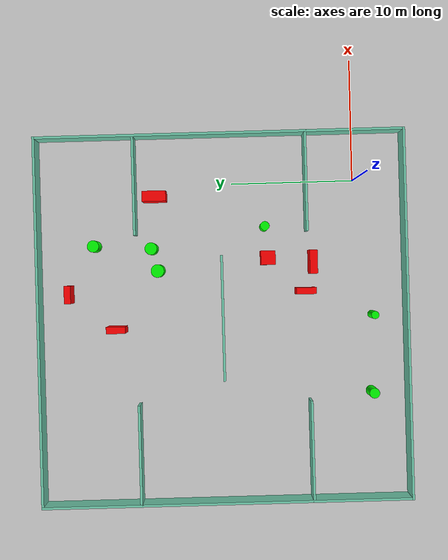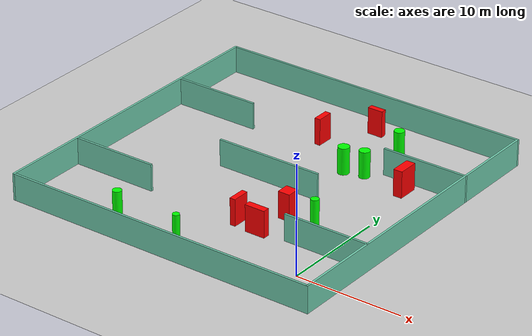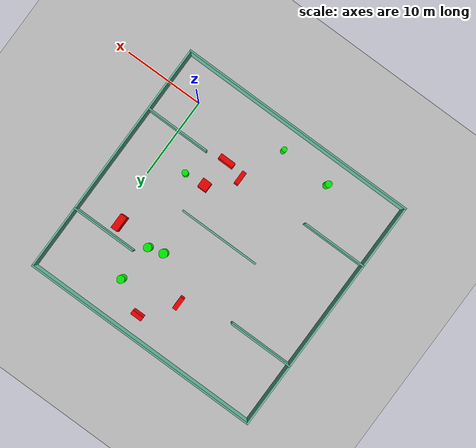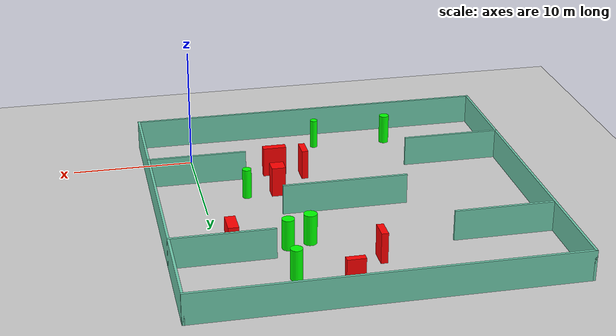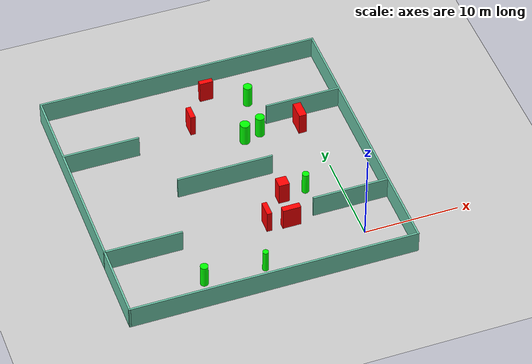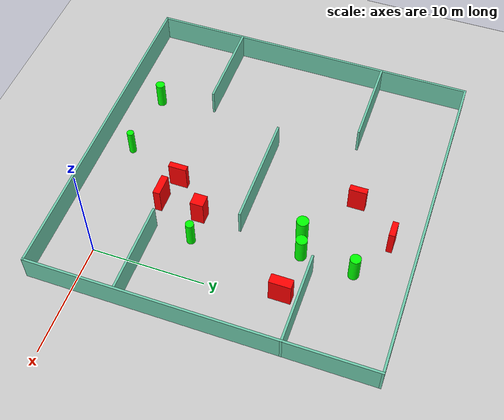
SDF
<sdf version="1.7">
 <world name="default">
  <light name="sun" type="directional">
   <pose>0 0 10 0 -0 0</pose>
   <diffuse>0.8 0.8 0.8 1</diffuse>
   <specular>0.2 0.2 0.2 1</specular>
   <attenuation>
    <range>1000</range>
    <constant>0.9</constant>
    <linear>0.01</linear>
    <quadratic>0.001</quadratic>
   </attenuation>
   <direction>-0.5 0.1 -0.9</direction>
   <spot><inner_angle>0</inner_angle><outer_angle>0</outer_angle><falloff>0</falloff></spot>
  </light>
  <model name="ground_plane">
   <static>1</static>
   <link name="link">
    <collision name="collision">
     <geometry><plane><normal>0 0 1</normal><size>100 100</size></plane></geometry>
     <surface>
      <contact><collide_bitmask>65535</collide_bitmask></contact>
      <friction><ode><mu>100</mu><mu2>50</mu2></ode></friction>
     </surface>
    </collision>
    <visual name="visual">
     <cast_shadows>0</cast_shadows>
     <geometry><plane><normal>0 0 1</normal><size>100 100</size></plane></geometry>
     <material>
      <script><uri>file://media/materials/scripts/gazebo.material</uri><name>Gazebo/Grey</name></script>
     </material>
    </visual>
   </link>
  </model>
  <gravity>0 0 -9.8</gravity>
  <magnetic_field>6e-06 2.3e-05 -4.2e-05</magnetic_field>
  <atmosphere type="adiabatic"/>
  <physics type="ode">
   <max_step_size>0.001</max_step_size>
   <real_time_factor>1</real_time_factor>
   <real_time_update_rate>1000</real_time_update_rate>
  </physics>
  <scene><ambient>0.4 0.4 0.4 1</ambient><background>0.7 0.7 0.7 1</background><shadows>1</shadows></scene>
  <spherical_coordinates>
   <surface_model>EARTH_WGS84</surface_model>
   <latitude_deg>0</latitude_deg>
   <longitude_deg>0</longitude_deg>
   <elevation>0</elevation>
   <heading_deg>0</heading_deg>
  </spherical_coordinates>
  <model name="my_base_walls">
   <link name="Wall_10">
    <collision name="Wall_10_Collision">
     <geometry><box><size>8.2 0.2 2.5</size></box></geometry>
     <pose>0 0 1.25 0 -0 0</pose>
    </collision>
    <visual name="Wall_10_Visual">
     <pose>0 0 1.25 0 -0 0</pose>
     <geometry><box><size>8.2 0.2 2.5</size></box></geometry>
     <material>
      <script><uri>file://media/materials/scripts/gazebo.material</uri><name>Gazebo/Grey</name></script>
      <ambient>0.435294 0.796078 0.67451 1</ambient>
     </material>
     <meta><layer>0</layer></meta>
    </visual>
    <pose>-11 -7 0 0 -0 0</pose>
   </link>
   <link name="Wall_12">
    <collision name="Wall_12_Collision">
     <geometry><box><size>8.2 0.2 2.5</size></box></geometry>
     <pose>0 0 1.25 0 -0 0</pose>
    </collision>
    <visual name="Wall_12_Visual">
     <pose>0 0 1.25 0 -0 0</pose>
     <geometry><box><size>8.2 0.2 2.5</size></box></geometry>
     <material>
      <script><uri>file://media/materials/scripts/gazebo.material</uri><name>Gazebo/Grey</name></script>
      <ambient>0.435294 0.796078 0.67451 1</ambient>
     </material>
     <meta><layer>0</layer></meta>
    </visual>
    <pose>-11 7 0 0 -0 0</pose>
   </link>
   <link name="Wall_14">
    <collision name="Wall_14_Collision">
     <geometry><box><size>8.2 0.2 2.5</size></box></geometry>
     <pose>0 0 1.25 0 -0 0</pose>
    </collision>
    <visual name="Wall_14_Visual">
     <pose>0 0 1.25 0 -0 0</pose>
     <geometry><box><size>8.2 0.2 2.5</size></box></geometry>
     <material>
      <script><uri>file://media/materials/scripts/gazebo.material</uri><name>Gazebo/Grey</name></script>
      <ambient>0.435294 0.796078 0.67451 1</ambient>
     </material>
     <meta><layer>0</layer></meta>
    </visual>
    <pose>11 7 0 0 -0 3.14159</pose>
   </link>
   <link name="Wall_16">
    <collision name="Wall_16_Collision">
     <geometry><box><size>10.2 0.2 2.5</size></box></geometry>
     <pose>0 0 1.25 0 -0 0</pose>
    </collision>
    <visual name="Wall_16_Visual">
     <pose>0 0 1.25 0 -0 0</pose>
     <geometry><box><size>10.2 0.2 2.5</size></box></geometry>
     <material>
      <script><uri>file://media/materials/scripts/gazebo.material</uri><name>Gazebo/Grey</name></script>
      <ambient>0.435294 0.796078 0.67451 1</ambient>
     </material>
     <meta><layer>0</layer></meta>
    </visual>
    <pose>0 0 0 0 -0 3.14159</pose>
   </link>
   <link name="Wall_2">
    <collision name="Wall_2_Collision">
     <geometry><box><size>30.2 0.2 2.5</size></box></geometry>
     <pose>0 0 1.25 0 -0 0</pose>
    </collision>
    <visual name="Wall_2_Visual">
     <pose>0 0 1.25 0 -0 0</pose>
     <geometry><box><size>30.2 0.2 2.5</size></box></geometry>
     <material>
      <script><uri>file://media/materials/scripts/gazebo.material</uri><name>Gazebo/Grey</name></script>
      <ambient>0.435294 0.796078 0.67451 1</ambient>
     </material>
     <meta><layer>0</layer></meta>
    </visual>
    <pose>0 -15 0 0 -0 3.14159</pose>
   </link>
   <link name="Wall_3">
    <collision name="Wall_3_Collision">
     <geometry><box><size>30.2 0.2 2.5</size></box></geometry>
     <pose>0 0 1.25 0 -0 0</pose>
    </collision>
    <visual name="Wall_3_Visual">
     <pose>0 0 1.25 0 -0 0</pose>
     <geometry><box><size>30.2 0.2 2.5</size></box></geometry>
     <material>
      <script><uri>file://media/materials/scripts/gazebo.material</uri><name>Gazebo/Grey</name></script>
      <ambient>0.435294 0.796078 0.67451 1</ambient>
     </material>
     <meta><layer>0</layer></meta>
    </visual>
    <pose>-15 0 0 0 -0 1.5708</pose>
   </link>
   <link name="Wall_4">
    <collision name="Wall_4_Collision">
     <geometry><box><size>30.2 0.2 2.5</size></box></geometry>
     <pose>0 0 1.25 0 -0 0</pose>
    </collision>
    <visual name="Wall_4_Visual">
     <pose>0 0 1.25 0 -0 0</pose>
     <geometry><box><size>30.2 0.2 2.5</size></box></geometry>
     <material>
      <script><uri>file://media/materials/scripts/gazebo.material</uri><name>Gazebo/Grey</name></script>
      <ambient>0.435294 0.796078 0.67451 1</ambient>
     </material>
     <meta><layer>0</layer></meta>
    </visual>
    <pose>0 15 0 0 -0 0</pose>
   </link>
   <link name="Wall_6">
    <collision name="Wall_6_Collision">
     <geometry><box><size>30.2 0.2 2.5</size></box></geometry>
     <pose>0 0 1.25 0 -0 0</pose>
    </collision>
    <visual name="Wall_6_Visual">
     <pose>0 0 1.25 0 -0 0</pose>
     <geometry><box><size>30.2 0.2 2.5</size></box></geometry>
     <material>
      <script><uri>file://media/materials/scripts/gazebo.material</uri><name>Gazebo/Grey</name></script>
      <ambient>0.435294 0.796078 0.67451 1</ambient>
     </material>
     <meta><layer>0</layer></meta>
    </visual>
    <pose>15 0 0 0 -0 1.5708</pose>
   </link>
   <link name="Wall_8">
    <collision name="Wall_8_Collision">
     <geometry><box><size>8.2 0.2 2.5</size></box></geometry>
     <pose>0 0 1.25 0 -0 0</pose>
    </collision>
    <visual name="Wall_8_Visual">
     <pose>0 0 1.25 0 -0 0</pose>
     <geometry><box><size>8.2 0.2 2.5</size></box></geometry>
     <material>
      <script><uri>file://media/materials/scripts/gazebo.material</uri><name>Gazebo/Grey</name></script>
      <ambient>0.435294 0.796078 0.67451 1</ambient>
     </material>
     <meta><layer>0</layer></meta>
    </visual>
    <pose>11 -7 0 0 -0 3.14159</pose>
   </link>
   <static>1</static>
   <pose>-11 11 0 0 -0 0</pose>
  </model>
  <model name="cylinder1">
   <static>1</static>
   <link name="link">
    <inertial>
     <mass>1</mass>
     <inertia><ixx>0.5</ixx><ixy>0</ixy><ixz>0</ixz><iyy>0.5</iyy><iyz>0</iyz><izz>1</izz></inertia>
    </inertial>
    <collision name="collision">
     <geometry><cylinder><radius>0.529953822154534</radius><length>2.5</length></cylinder></geometry>
    </collision>
    <visual name="visual">
     <geometry><cylinder><radius>0.529953822154534</radius><length>2.5</length></cylinder></geometry>
     <material>
      <ambient>0 1 0 1</ambient>
      <diffuse>0 1 0 1</diffuse>
      <specular>0.1 0.1 0.1 1</specular>
      <emissive>0 0 0 0</emissive>
     </material>
    </visual>
   </link>
   <pose>-7.030655248463958 16.20552167848178 1.25 0 0 0</pose>
  </model>
  <model name="cylinder2">
   <static>1</static>
   <link name="link">
    <inertial>
     <mass>1</mass>
     <inertia><ixx>0.5</ixx><ixy>0</ixy><ixz>0</ixz><iyy>0.5</iyy><iyz>0</iyz><izz>1</izz></inertia>
    </inertial>
    <collision name="collision">
     <geometry><cylinder><radius>0.3153908092993841</radius><length>2.5</length></cylinder></geometry>
    </collision>
    <visual name="visual">
     <geometry><cylinder><radius>0.3153908092993841</radius><length>2.5</length></cylinder></geometry>
     <material>
      <ambient>0 1 0 1</ambient>
      <diffuse>0 1 0 1</diffuse>
      <specular>0.1 0.1 0.1 1</specular>
      <emissive>0 0 0 0</emissive>
     </material>
    </visual>
   </link>
   <pose>-11.069543768905138 -1.3032330781540273 1.25 0 0 0</pose>
  </model>
  <model name="cylinder3">
   <static>1</static>
   <link name="link">
    <inertial>
     <mass>1</mass>
     <inertia><ixx>0.5</ixx><ixy>0</ixy><ixz>0</ixz><iyy>0.5</iyy><iyz>0</iyz><izz>1</izz></inertia>
    </inertial>
    <collision name="collision">
     <geometry><cylinder><radius>0.37254335208122313</radius><length>2.5</length></cylinder></geometry>
    </collision>
    <visual name="visual">
     <geometry><cylinder><radius>0.37254335208122313</radius><length>2.5</length></cylinder></geometry>
     <material>
      <ambient>0 1 0 1</ambient>
      <diffuse>0 1 0 1</diffuse>
      <specular>0.1 0.1 0.1 1</specular>
      <emissive>0 0 0 0</emissive>
     </material>
    </visual>
   </link>
   <pose>-3.623492511718865 7.427203267041666 1.25 0 0 0</pose>
  </model>
  <model name="cylinder4">
   <static>1</static>
   <link name="link">
    <inertial>
     <mass>1</mass>
     <inertia><ixx>0.5</ixx><ixy>0</ixy><ixz>0</ixz><iyy>0.5</iyy><iyz>0</iyz><izz>1</izz></inertia>
    </inertial>
    <collision name="collision">
     <geometry><cylinder><radius>0.47394218462480203</radius><length>2.5</length></cylinder></geometry>
    </collision>
    <visual name="visual">
     <geometry><cylinder><radius>0.47394218462480203</radius><length>2.5</length></cylinder></geometry>
     <material>
      <ambient>0 1 0 1</ambient>
      <diffuse>0 1 0 1</diffuse>
      <specular>0.1 0.1 0.1 1</specular>
      <emissive>0 0 0 0</emissive>
     </material>
    </visual>
   </link>
   <pose>-4.902327033697768 21.371357022187745 1.25 0 0 0</pose>
  </model>
  <model name="cylinder5">
   <static>1</static>
   <link name="link">
    <inertial>
     <mass>1</mass>
     <inertia><ixx>0.5</ixx><ixy>0</ixy><ixz>0</ixz><iyy>0.5</iyy><iyz>0</iyz><izz>1</izz></inertia>
    </inertial>
    <collision name="collision">
     <geometry><cylinder><radius>0.4961011678103849</radius><length>2.5</length></cylinder></geometry>
    </collision>
    <visual name="visual">
     <geometry><cylinder><radius>0.4961011678103849</radius><length>2.5</length></cylinder></geometry>
     <material>
      <ambient>0 1 0 1</ambient>
      <diffuse>0 1 0 1</diffuse>
      <specular>0.1 0.1 0.1 1</specular>
      <emissive>0 0 0 0</emissive>
     </material>
    </visual>
   </link>
   <pose>-5.212145679963491 16.691436400659533 1.25 0 0 0</pose>
  </model>
  <model name="cylinder6">
   <static>1</static>
   <link name="link">
    <inertial>
     <mass>1</mass>
     <inertia><ixx>0.5</ixx><ixy>0</ixy><ixz>0</ixz><iyy>0.5</iyy><iyz>0</iyz><izz>1</izz></inertia>
    </inertial>
    <collision name="collision">
     <geometry><cylinder><radius>0.41343296139335517</radius><length>2.5</length></cylinder></geometry>
    </collision>
    <visual name="visual">
     <geometry><cylinder><radius>0.41343296139335517</radius><length>2.5</length></cylinder></geometry>
     <material>
      <ambient>0 1 0 1</ambient>
      <diffuse>0 1 0 1</diffuse>
      <specular>0.1 0.1 0.1 1</specular>
      <emissive>0 0 0 0</emissive>
     </material>
    </visual>
   </link>
   <pose>-17.391743302797067 -1.0940527576541874 1.25 0 0 0</pose>
  </model>
  <model name="box1">
   <static>1</static>
   <link name="link">
    <inertial>
     <mass>1</mass>
     <inertia><ixx>0.083</ixx><ixy>0</ixy><ixz>0</ixz><iyy>0.083</iyy><iyz>0</iyz><izz>0.083</izz></inertia>
    </inertial>
    <collision name="collision">
     <geometry><box><size>0.5281561349004591 1.633708956285287 2.5</size></box></geometry>
    </collision>
    <visual name="visual">
     <geometry><box><size>0.5281561349004591 1.633708956285287 2.5</size></box></geometry>
     <material>
      <ambient>1 0 0 1</ambient>
      <diffuse>1 0 0 1</diffuse>
      <specular>0.1 0.1 0.1 1</specular>
      <emissive>0 0 0 0</emissive>
     </material>
    </visual>
    <sensor name="my_contact" type="contact">
     <contact><collision>box_collision</collision><topic>__default_topic__</topic></contact>
    </sensor>
   </link>
   <pose>-8.960958166410947 4.20203346112017 1.25 0 0 0</pose>
  </model>
  <model name="box2">
   <static>1</static>
   <link name="link">
    <inertial>
     <mass>1</mass>
     <inertia><ixx>0.083</ixx><ixy>0</ixy><ixz>0</ixz><iyy>0.083</iyy><iyz>0</iyz><izz>0.083</izz></inertia>
    </inertial>
    <collision name="collision">
     <geometry><box><size>1.9299498718750314 0.6275477497743102 2.5</size></box></geometry>
    </collision>
    <visual name="visual">
     <geometry><box><size>1.9299498718750314 0.6275477497743102 2.5</size></box></geometry>
     <material>
      <ambient>1 0 0 1</ambient>
      <diffuse>1 0 0 1</diffuse>
      <specular>0.1 0.1 0.1 1</specular>
      <emissive>0 0 0 0</emissive>
     </material>
    </visual>
    <sensor name="my_contact" type="contact">
     <contact><collision>box_collision</collision><topic>__default_topic__</topic></contact>
    </sensor>
   </link>
   <pose>-6.6105297476158285 3.55179089391085 1.25 0 0 0</pose>
  </model>
  <model name="box3">
   <static>1</static>
   <link name="link">
    <inertial>
     <mass>1</mass>
     <inertia><ixx>0.083</ixx><ixy>0</ixy><ixz>0</ixz><iyy>0.083</iyy><iyz>0</iyz><izz>0.083</izz></inertia>
    </inertial>
    <collision name="collision">
     <geometry><box><size>0.8425572466496858 1.9182658190252206 2.5</size></box></geometry>
    </collision>
    <visual name="visual">
     <geometry><box><size>0.8425572466496858 1.9182658190252206 2.5</size></box></geometry>
     <material>
      <ambient>1 0 0 1</ambient>
      <diffuse>1 0 0 1</diffuse>
      <specular>0.1 0.1 0.1 1</specular>
      <emissive>0 0 0 0</emissive>
     </material>
    </visual>
    <sensor name="my_contact" type="contact">
     <contact><collision>box_collision</collision><topic>__default_topic__</topic></contact>
    </sensor>
   </link>
   <pose>-0.954780776961492 16.353166070233435 1.25 0 0 0</pose>
  </model>
  <model name="box4">
   <static>1</static>
   <link name="link">
    <inertial>
     <mass>1</mass>
     <inertia><ixx>0.083</ixx><ixy>0</ixy><ixz>0</ixz><iyy>0.083</iyy><iyz>0</iyz><izz>0.083</izz></inertia>
    </inertial>
    <collision name="collision">
     <geometry><box><size>0.5485666901687882 1.5676617491833262 2.5</size></box></geometry>
    </collision>
    <visual name="visual">
     <geometry><box><size>0.5485666901687882 1.5676617491833262 2.5</size></box></geometry>
     <material>
      <ambient>1 0 0 1</ambient>
      <diffuse>1 0 0 1</diffuse>
      <specular>0.1 0.1 0.1 1</specular>
      <emissive>0 0 0 0</emissive>
     </material>
    </visual>
    <sensor name="my_contact" type="contact">
     <contact><collision>box_collision</collision><topic>__default_topic__</topic></contact>
    </sensor>
   </link>
   <pose>-11.748007630844986 19.717949072135 1.25 0 0 0</pose>
  </model>
  <model name="box5">
   <static>1</static>
   <link name="link">
    <inertial>
     <mass>1</mass>
     <inertia><ixx>0.083</ixx><ixy>0</ixy><ixz>0</ixz><iyy>0.083</iyy><iyz>0</iyz><izz>0.083</izz></inertia>
    </inertial>
    <collision name="collision">
     <geometry><box><size>1.1421738223073423 1.174757557620813 2.5</size></box></geometry>
    </collision>
    <visual name="visual">
     <geometry><box><size>1.1421738223073423 1.174757557620813 2.5</size></box></geometry>
     <material>
      <ambient>1 0 0 1</ambient>
      <diffuse>1 0 0 1</diffuse>
      <specular>0.1 0.1 0.1 1</specular>
      <emissive>0 0 0 0</emissive>
     </material>
    </visual>
    <sensor name="my_contact" type="contact">
     <contact><collision>box_collision</collision><topic>__default_topic__</topic></contact>
    </sensor>
   </link>
   <pose>-6.197392924653506 7.228867611583592 1.25 0 0 0</pose>
  </model>
  <model name="box6">
   <static>1</static>
   <link name="link">
    <inertial>
     <mass>1</mass>
     <inertia><ixx>0.083</ixx><ixy>0</ixy><ixz>0</ixz><iyy>0.083</iyy><iyz>0</iyz><izz>0.083</izz></inertia>
    </inertial>
    <collision name="collision">
     <geometry><box><size>1.4544967417101549 0.5217981179469486 2.5</size></box></geometry>
    </collision>
    <visual name="visual">
     <geometry><box><size>1.4544967417101549 0.5217981179469486 2.5</size></box></geometry>
     <material>
      <ambient>1 0 0 1</ambient>
      <diffuse>1 0 0 1</diffuse>
      <specular>0.1 0.1 0.1 1</specular>
      <emissive>0 0 0 0</emissive>
     </material>
    </visual>
    <sensor name="my_contact" type="contact">
     <contact><collision>box_collision</collision><topic>__default_topic__</topic></contact>
    </sensor>
   </link>
   <pose>-8.780107374560561 23.563711873627554 1.25 0 0 0</pose>
  </model>
 </world>
</sdf>
